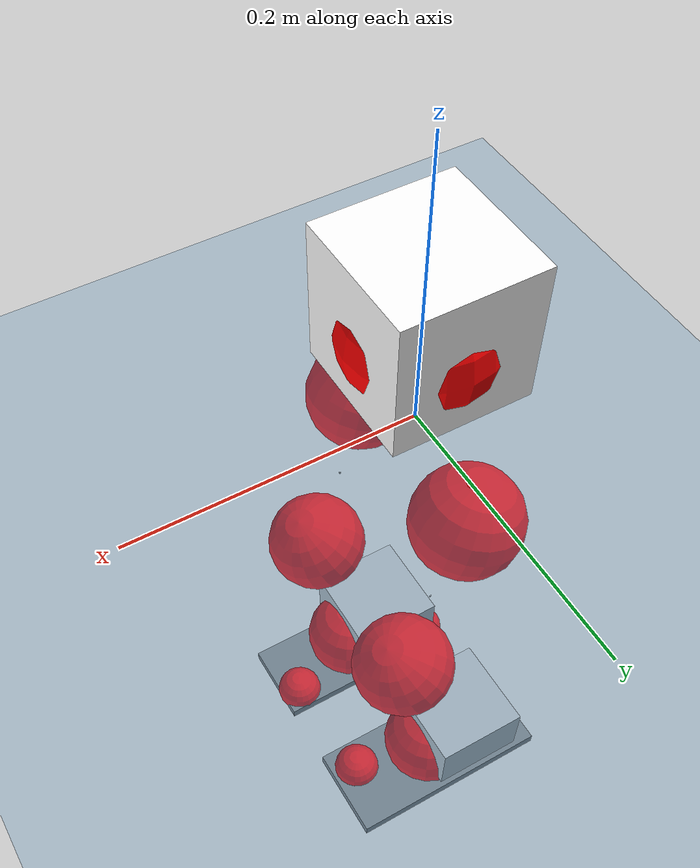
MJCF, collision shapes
<mujoco model="pi_12dof_release_v1">
  <compiler angle="radian" assetdir="assets" balanceinertia="true" inertiafromgeom="false"/>

  <option timestep="0.005" density="1.2" viscosity="2e-05"/>

  <size nkey="1"/>

  <visual>
    <quality shadowsize="8192"/>
    <map shadowclip="0.5"/>
  </visual>

  <default>
    <default class="/">
      <joint armature="0.01" damping="0.01" frictionloss="0.01"/>
      <geom contype="0" conaffinity="0" group="1" solref="-1000 -80"/>
      <site size="0.01 0.005 0.005" group="5"/>
      <general forcelimited="true" biastype="affine" gainprm="20" biasprm="0 -20 -0.5"/>
      <default class="foot">
        <geom size="0.0845 0.036 0.005" type="box" condim="6" group="4" priority="1" friction="0.9 0.2 0.2" solimp="0.015 1 0.005"/>
      </default>
      <default class="reward_collision_sphere">
        <geom group="5" rgba="1 0 0 1"/>
      </default>
    </default>
  </default>

  <asset>
    <texture type="skybox" colorspace="auto" name="//unnamed_texture_0" builtin="gradient" rgb1="0.95 0.95 0.95" rgb2="0.95 0.95 0.95" width="100" height="600"/>
    <texture type="2d" colorspace="auto" name="texplane" builtin="checker" rgb1="0.345 0.575 0.748" rgb2="0.345 0.575 0.748" markrgb="1 1 1" width="512" height="512"/>
    <material name="MatPlane" class="/" texture="texplane" texuniform="true" texrepeat="2 2" specular="0.9"/>
    <mesh name="baselink_1" class="/" file="baselink_1.STL"/>
    <mesh name="r_hip_pitch_link" class="/" file="r_hip_pitch_link.STL"/>
    <mesh name="r_hip_roll_link" class="/" file="r_hip_roll_link.STL"/>
    <mesh name="r_thigh_link" class="/" file="r_thigh_link.STL"/>
    <mesh name="r_calf_link" class="/" file="r_calf_link.STL"/>
    <mesh name="r_ankle_pitch_link" class="/" file="r_ankle_pitch_link.STL"/>
    <mesh name="r_ankle_roll_link" class="/" file="r_ankle_roll_link.STL"/>
    <mesh name="l_hip_pitch_link" class="/" file="l_hip_pitch_link.STL"/>
    <mesh name="l_hip_roll_link" class="/" file="l_hip_roll_link.STL"/>
    <mesh name="l_thigh_link" class="/" file="l_thigh_link.STL"/>
    <mesh name="l_calf_link" class="/" file="l_calf_link.STL"/>
    <mesh name="l_ankle_pitch_link" class="/" file="l_ankle_pitch_link.STL"/>
    <mesh name="l_ankle_roll_link" class="/" file="l_ankle_roll_link.STL"/>
  </asset>

  <worldbody>
    <geom name="floor" class="/" size="100 100 0.125" type="plane" group="0" material="MatPlane"/>
    <light name="toplight_shadow" class="/" pos="0 0 5" dir="0.0990148 0.0990148 -0.990148" type="directional" ambient="0.04 0.04 0.04" diffuse="0.55 0.55 0.55" specular="0.12 0.12 0.12"/>
    <light name="toplight_fill" class="/" pos="0 0 5" dir="0.0990148 0.0990148 -0.990148" type="directional" castshadow="false" ambient="0.04 0.04 0.04" diffuse="0.3 0.3 0.3" specular="0.08 0.08 0.08"/>
    <body name="trunk" pos="-0.00016075 4.6559e-05 -0.00204928" quat="1 -0.000182242 -5.60808e-05 0.000202106">
      <inertial pos="0.00221312 0.00245271 0.0465454" quat="0.695228 0.00990014 0.00928222 0.718661" mass="1.80607" diaginertia="0.00801644 0.00284006 0.00644558"/>
      <joint name="//unnamed_joint_0" type="free"/>
      <geom name="//unnamed_geom_1" class="/" type="mesh" density="0" rgba="1 1 1 1" mesh="baselink_1"/>
      <geom name="//unnamed_geom_2" class="/" size="0.0474216 0.0474216 0.0474216" pos="0 0 0.0875554" type="box" rgba="1 1 1 1"/>
      <geom name="//unnamed_geom_3" class="reward_collision_sphere" size="0.0521637" pos="0 0 0.076611"/>
      <site name="imu" class="/" pos="-0.00264125 -0.00507276 -0.00160607" size="0.00948431"/>
      <camera name="track" class="/" pos="0 -1.58972 0" quat="0.707107 0.707107 0 0" mode="trackcom"/>
      <camera name="ego_camera" class="/" pos="0.0716995 0 0.197" quat="-0.5 -0.5 0.5 0.5"/>
      <body name="r_hip_pitch_link" pos="0.00132777 -0.0192867 -0.0369389" quat="0.992236 -0.00017986 -0.124372 0.000152696">
        <inertial pos="-0.00164317 -0.0439515 -0.000497099" quat="-0.019121 0.707703 -0.0311951 0.705562" mass="0.323015" diaginertia="8.7606e-05 3.10995e-05 0.000133766"/>
        <joint name="r_hip_pitch_joint" class="/" pos="0 0 0" axis="-0.00414448 -0.999912 0.0126049" stiffness="0.00788539" range="-1.73747 1.21217" armature="0.00893735" damping="0.00612735" frictionloss="0.00841246"/>
        <geom name="//unnamed_geom_4" class="/" type="mesh" density="0" rgba="0.75294 0.75294 0.75294 1" mesh="r_hip_pitch_link"/>
        <geom name="//unnamed_geom_5" class="/" size="0.000474216 0.000474216 0.000474216" type="box" rgba="0.75294 0.75294 0.75294 1"/>
        <body name="r_hip_roll_link" pos="0.000849558 -0.0436619 0.000853984" quat="1 -7.36267e-05 0.000115739 2.99636e-05">
          <inertial pos="-0.00130275 -0.00044325 -0.068509" quat="0.704108 -0.0797759 -0.0824904 0.700759" mass="0.316129" diaginertia="0.000266669 8.78139e-05 0.00018837"/>
          <joint name="r_hip_roll_joint" class="/" pos="0 0 0" axis="-0.999935 0.00564867 -0.00986802" range="-0.119124 0.500295" armature="0.0098853" damping="0.0110723" frictionloss="0.0100303"/>
          <geom name="//unnamed_geom_6" class="/" type="mesh" density="0" rgba="0.75294 0.75294 0.75294 1" mesh="r_hip_roll_link"/>
          <geom name="//unnamed_geom_7" class="/" size="0.000474216 0.000474216 0.000474216" type="box" rgba="0.75294 0.75294 0.75294 1"/>
          <geom name="//unnamed_geom_8" class="reward_collision_sphere" size="0.0379372"/>
          <body name="r_thigh_link" pos="0.000180248 0.00271024 -0.0733443" quat="0.999999 -0.00134356 -0.000209793 7.78456e-05">
            <inertial pos="0.000104207 0.000764237 -0.0526081" quat="0.737144 0.675736 0.000611922 -0.000437488" mass="0.0939461" diaginertia="9.9814e-05 2.93497e-05 8.86649e-05"/>
            <joint name="r_thigh_joint" class="/" pos="0 0 0" axis="-0.000114559 0.000729574 -1" range="-0.299913 0.552884" armature="0.0107058" damping="0.00325231" frictionloss="0.00961328"/>
            <geom name="//unnamed_geom_9" class="/" type="mesh" density="0" rgba="0.75294 0.75294 0.75294 1" mesh="r_thigh_link"/>
            <geom name="//unnamed_geom_10" class="/" size="0.000474216 0.000474216 0.000474216" type="box" rgba="0.75294 0.75294 0.75294 1"/>
            <body name="r_calf_link" pos="0.000405507 -0.0023197 -0.0777557" quat="0.947409 -0.00102244 0.320023 -0.000178537">
              <inertial pos="-0.000899084 -0.00186311 -0.0753263" quat="0.99999 -0.00226125 2.76332e-05 0.00395533" mass="0.663962" diaginertia="0.00270926 0.00106441 0.000273788"/>
              <joint name="r_calf_joint" class="/" pos="0 0 0" axis="0.0111303 -0.999895 0.00931945" stiffness="0.00960232" range="-1.65326 0.647506" armature="0.00944641" damping="0.00865954" frictionloss="0.00990911"/>
              <geom name="//unnamed_geom_11" class="/" type="mesh" density="0" rgba="0.75294 0.75294 0.75294 1" mesh="r_calf_link"/>
              <geom name="//unnamed_geom_12" class="/" size="0.000474216 0.000474216 0.000474216" type="box" rgba="0.75294 0.75294 0.75294 1"/>
              <geom name="//unnamed_geom_13" class="reward_collision_sphere" size="0.0379372"/>
              <body name="r_ankle_pitch_link" pos="0.00321961 0.00195972 -0.152853" quat="0.98011 -0.000324434 -0.198456 -6.48942e-05">
                <inertial pos="0.0044049 0.00373117 -0.000241404" quat="0.00166552 0.706325 -0.00127738 0.707884" mass="0.153763" diaginertia="0.000245004 7.25473e-05 0.00019173"/>
                <joint name="r_ankle_pitch_joint" class="/" pos="0 0 0" axis="-6.04457e-05 -1 -3.73022e-05" range="-1.3311 0.506189" armature="0.00959886" damping="0.0235535" frictionloss="0.0107211"/>
                <geom name="//unnamed_geom_14" class="/" type="mesh" density="0" rgba="0.75294 0.75294 0.75294 1" mesh="r_ankle_pitch_link"/>
                <geom name="//unnamed_geom_15" class="/" size="0.0369888 0.0379372 0.0237108" type="box" rgba="0.75294 0.75294 0.75294 1"/>
                <body name="r_ankle_roll_link" pos="0.0755048 0.0018376 0.0013549" quat="1 0.000238033 4.29917e-05 0.000395941">
                  <inertial pos="-0.0227797 0.00112452 -0.013173" quat="0.562458 0.43109 0.430669 0.558862" mass="0.426887" diaginertia="0.000914518 0.000323708 0.000440108"/>
                  <joint name="r_ankle_roll_joint" class="/" pos="0 0 0" axis="-0.999995 0.00321715 -0.000148076" range="-0.159681 0.168637" armature="0.00950806" damping="0.0084331" frictionloss="0.0107282"/>
                  <geom name="//unnamed_geom_16" class="/" type="mesh" density="0" rgba="0.75294 0.75294 0.75294 1" mesh="r_ankle_roll_link"/>
                  <geom name="//unnamed_geom_17" class="/" type="mesh" rgba="0.75294 0.75294 0.75294 1" mesh="r_ankle_roll_link"/>
                  <geom name="right_foot" class="foot" size="0.0792846 0.0345051 0.00419419" pos="-0.0487557 0 -0.0481555"/>
                  <geom name="//unnamed_geom_19" class="reward_collision_sphere" size="0.0379372" pos="-0.0477997 0 -0.0218888"/>
                  <geom name="//unnamed_geom_20" class="reward_collision_sphere" size="0.0189686" pos="0.0143399 0.0158972 -0.0437777"/>
                  <geom name="//unnamed_geom_21" class="reward_collision_sphere" size="0.0189686" pos="-0.114719 0.0158972 -0.0437777"/>
                  <site name="right_foot" class="foot" pos="-0.0487557 0 -0.0481555" size="0.00948431"/>
                </body>
              </body>
            </body>
          </body>
        </body>
      </body>
      <body name="l_hip_pitch_link" pos="-0.000114106 0.0204418 -0.0361088" quat="0.992168 -8.60678e-05 -0.124907 0.000408669">
        <inertial pos="0.000352598 0.0400934 -0.00132284" quat="-0.0468879 0.703722 0.038276 0.707893" mass="0.321834" diaginertia="0.000101698 3.40473e-05 0.000157628"/>
        <joint name="l_hip_pitch_joint" class="/" pos="0 0 0" axis="0.000855131 1 -0.000220328" range="-1.19906 1.69742" armature="0.0101796" damping="0.0148439" frictionloss="0.00826678"/>
        <geom name="//unnamed_geom_22" class="/" type="mesh" density="0" rgba="0.75294 0.75294 0.75294 1" mesh="l_hip_pitch_link"/>
        <geom name="//unnamed_geom_23" class="/" size="0.000474216 0.000474216 0.000474216" type="box" rgba="0.75294 0.75294 0.75294 1"/>
        <body name="l_hip_roll_link" pos="-0.000708917 0.0419455 0.000209176" quat="1 -0.000150526 -6.45443e-06 -7.31493e-05">
          <inertial pos="-0.000325882 -0.00201374 -0.0665681" quat="0.699511 -0.0754009 -0.0770114 0.706448" mass="0.332137" diaginertia="0.000278559 8.98817e-05 0.000210189"/>
          <joint name="l_hip_roll_joint" class="/" pos="0 0 0" axis="-0.999999 0.00113854 -0.000871999" range="-0.449034 0.0633824" armature="0.0091035" damping="0.00431919" frictionloss="0.00938363"/>
          <geom name="//unnamed_geom_24" class="/" type="mesh" density="0" rgba="0.75294 0.75294 0.75294 1" mesh="l_hip_roll_link"/>
          <geom name="//unnamed_geom_25" class="/" size="0.000474216 0.000474216 0.000474216" type="box" rgba="0.75294 0.75294 0.75294 1"/>
          <geom name="//unnamed_geom_26" class="reward_collision_sphere" size="0.0379372"/>
          <body name="l_thigh_link" pos="0.00177077 -0.00135925 -0.0758233" quat="0.999999 -0.000149731 0.000879975 -0.00098395">
            <inertial pos="0.00277739 -0.000925938 -0.0540576" quat="0.675638 0.737234 2.04546e-05 0.000324144" mass="0.0957545" diaginertia="0.000103794 3.20073e-05 9.65984e-05"/>
            <joint name="l_thigh_joint" class="/" pos="0 0 0" axis="-0.00297752 -0.00487395 -0.999984" range="-0.620763 0.246838" armature="0.00943382" damping="0.017827" frictionloss="0.00850511"/>
            <geom name="//unnamed_geom_27" class="/" type="mesh" density="0" rgba="0.75294 0.75294 0.75294 1" mesh="l_thigh_link"/>
            <geom name="//unnamed_geom_28" class="/" size="0.000474216 0.000474216 0.000474216" type="box" rgba="0.75294 0.75294 0.75294 1"/>
            <body name="l_calf_link" pos="0.000624203 0.00247935 -0.0765541" quat="0.947961 0.000935031 0.318384 0.000230865">
              <inertial pos="-0.00058727 0.00289816 -0.0774307" quat="0.999961 -0.00528796 0.0066429 -0.0023933" mass="0.68738" diaginertia="0.0028032 0.00107805 0.000267417"/>
              <joint name="l_calf_joint" class="/" pos="0 0 0" axis="0.00445035 0.999988 0.0018009" stiffness="0.000425381" range="-0.670983 1.64212" armature="0.00935128" damping="0.00254091" frictionloss="0.00871507"/>
              <geom name="//unnamed_geom_29" class="/" type="mesh" density="0" rgba="0.75294 0.75294 0.75294 1" mesh="l_calf_link"/>
              <geom name="//unnamed_geom_30" class="/" size="0.000474216 0.000474216 0.000474216" type="box" rgba="0.75294 0.75294 0.75294 1"/>
              <geom name="//unnamed_geom_31" class="reward_collision_sphere" size="0.0379372"/>
              <body name="l_ankle_pitch_link" pos="0.000664599 -0.000303555 -0.155578" quat="0.98013 -5.53936e-05 -0.198357 -7.01338e-05">
                <inertial pos="0.00475954 0.00178541 0.000906584" quat="-0.0125256 0.708632 -0.00354888 0.705458" mass="0.145753" diaginertia="0.000236769 6.77297e-05 0.000182519"/>
                <joint name="l_ankle_pitch_joint" class="/" pos="0 0 0" axis="-0.0091404 0.999899 -0.0108677" range="-0.515259 1.30744" armature="0.00967522" damping="0" frictionloss="0.00999121"/>
                <geom name="//unnamed_geom_32" class="/" type="mesh" density="0" rgba="0.75294 0.75294 0.75294 1" mesh="l_ankle_pitch_link"/>
                <geom name="//unnamed_geom_33" class="/" size="0.0369888 0.0379372 0.0237108" type="box" rgba="0.75294 0.75294 0.75294 1"/>
                <body name="l_ankle_roll_link" pos="0.0723511 -0.00189336 -0.000261319" quat="0.999999 1.14696e-05 0.00112281 0.000148794">
                  <inertial pos="-0.023627 -0.000948533 -0.0156139" quat="0.557643 0.4368 0.423664 0.564578" mass="0.423803" diaginertia="0.000884464 0.000327647 0.000454922"/>
                  <joint name="l_ankle_roll_joint" class="/" pos="0 0 0" axis="-0.999918 0.0121766 0.00395206" range="-0.145493 0.102617" armature="0.00943277" damping="0.00531573" frictionloss="0.00826541"/>
                  <geom name="//unnamed_geom_34" class="/" type="mesh" density="0" rgba="0.75294 0.75294 0.75294 1" mesh="l_ankle_roll_link"/>
                  <geom name="//unnamed_geom_35" class="/" type="mesh" rgba="0.75294 0.75294 0.75294 1" mesh="l_ankle_roll_link"/>
                  <geom name="left_foot" class="foot" size="0.0848939 0.0378786 0.00477977" pos="-0.0487557 0 -0.0481555"/>
                  <geom name="//unnamed_geom_37" class="reward_collision_sphere" size="0.0379372" pos="-0.0477997 0 -0.0218888"/>
                  <geom name="//unnamed_geom_38" class="reward_collision_sphere" size="0.0189686" pos="0.0143399 -0.0158972 -0.0437777"/>
                  <geom name="//unnamed_geom_39" class="reward_collision_sphere" size="0.0189686" pos="-0.114719 -0.0158972 -0.0437777"/>
                  <site name="left_foot" class="foot" pos="-0.0487557 0 -0.0481555" size="0.00948431"/>
                </body>
              </body>
            </body>
          </body>
        </body>
      </body>
    </body>
  </worldbody>

  <contact>
    <pair class="/" geom1="floor" geom2="right_foot" name="//unnamed_contact_1"/>
    <pair class="/" geom1="floor" geom2="left_foot" name="//unnamed_contact_0"/>
  </contact>

  <actuator>
    <general name="r_hip_pitch_joint" class="/" joint="r_hip_pitch_joint" forcerange="-18.4367 18.4367" gainprm="19.0839" biasprm="0 -19.0839 -0.464127"/>
    <general name="r_hip_roll_joint" class="/" joint="r_hip_roll_joint" forcerange="-20.0685 20.0685" gainprm="19.0839" biasprm="0 -19.0839 -0.464127"/>
    <general name="r_thigh_joint" class="/" joint="r_thigh_joint" forcerange="-18.8946 18.8946" gainprm="19.0839" biasprm="0 -19.0839 -0.464127"/>
    <general name="r_calf_joint" class="/" joint="r_calf_joint" forcerange="-19.438 19.438" gainprm="19.0839" biasprm="0 -19.0839 -0.464127"/>
    <general name="r_ankle_pitch_joint" class="/" joint="r_ankle_pitch_joint" forcerange="-21.1058 21.1058" gainprm="19.0839" biasprm="0 -19.0839 -0.464127"/>
    <general name="r_ankle_roll_joint" class="/" joint="r_ankle_roll_joint" forcerange="-21.945 21.945" gainprm="19.0839" biasprm="0 -19.0839 -0.464127"/>
    <general name="l_hip_pitch_joint" class="/" joint="l_hip_pitch_joint" forcerange="-19.1772 19.1772" gainprm="19.0839" biasprm="0 -19.0839 -0.464127"/>
    <general name="l_hip_roll_joint" class="/" joint="l_hip_roll_joint" forcerange="-17.9893 17.9893" gainprm="19.0839" biasprm="0 -19.0839 -0.464127"/>
    <general name="l_thigh_joint" class="/" joint="l_thigh_joint" forcerange="-19.1616 19.1616" gainprm="19.0839" biasprm="0 -19.0839 -0.464127"/>
    <general name="l_calf_joint" class="/" joint="l_calf_joint" forcerange="-20.5273 20.5273" gainprm="19.0839" biasprm="0 -19.0839 -0.464127"/>
    <general name="l_ankle_pitch_joint" class="/" joint="l_ankle_pitch_joint" forcerange="-19.4717 19.4717" gainprm="19.0839" biasprm="0 -19.0839 -0.464127"/>
    <general name="l_ankle_roll_joint" class="/" joint="l_ankle_roll_joint" forcerange="-19.5878 19.5878" gainprm="19.0839" biasprm="0 -19.0839 -0.464127"/>
  </actuator>

  <sensor>
    <gyro site="imu" name="imu_angular_velocity"/>
    <velocimeter site="imu" name="imu_linear_velocity"/>
    <framelinvel objtype="site" objname="left_foot" name="left_foot_global_linear_velocity"/>
    <framelinvel objtype="site" objname="right_foot" name="right_foot_global_linear_velocity"/>
  </sensor>

  <keyframe>
    <key name="home" qpos="0 0 0.291 1 0 0 0 0.4 0 0 -0.8 0.4 0 -0.4 0 0 0.8 -0.4 0"/>
  </keyframe>
</mujoco>
